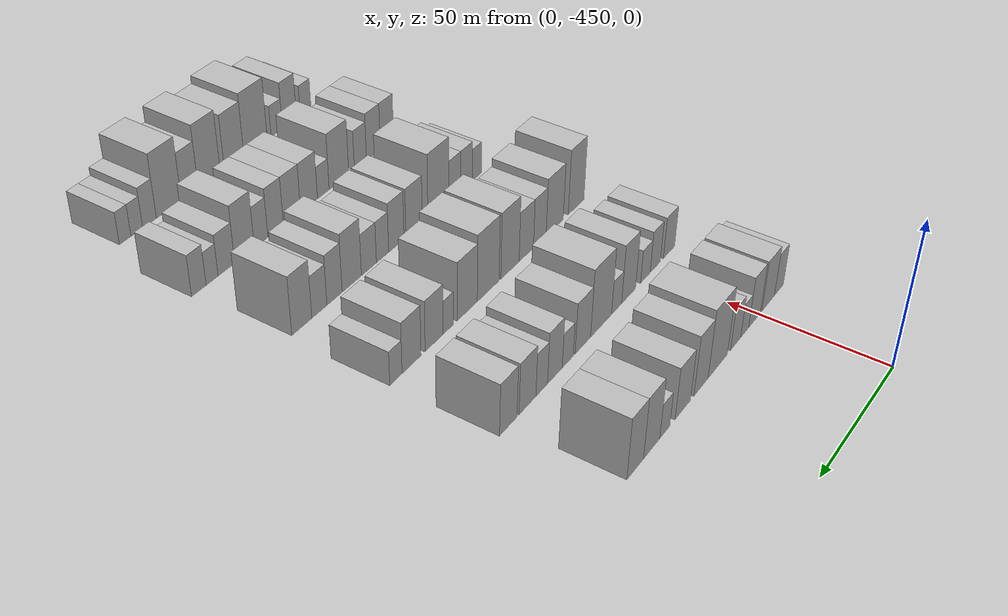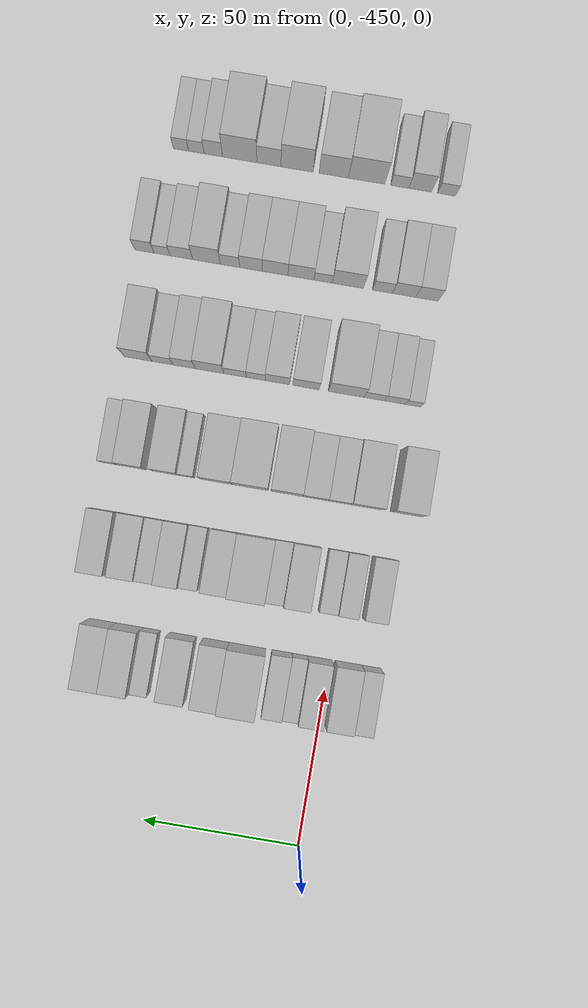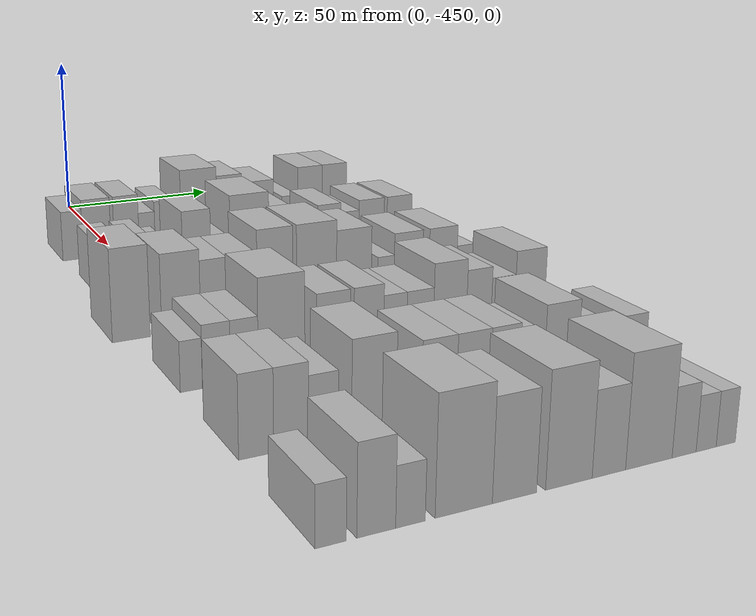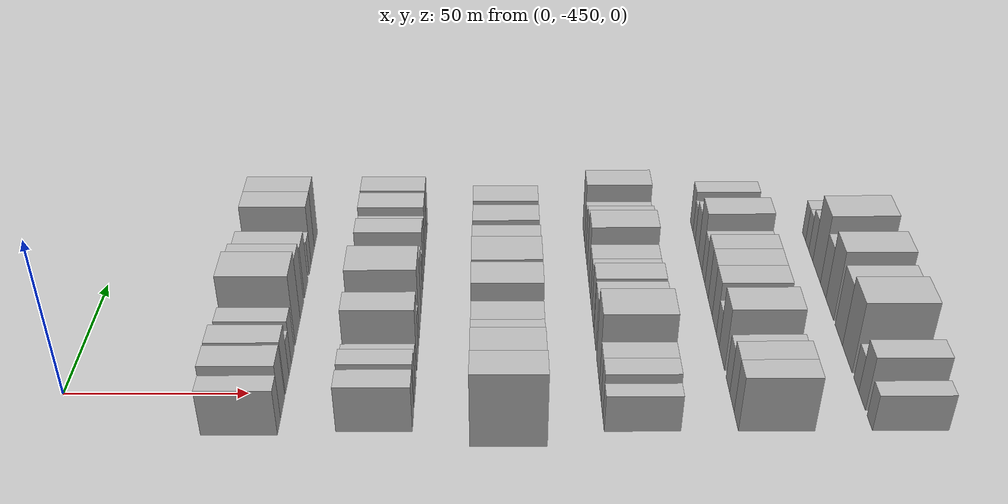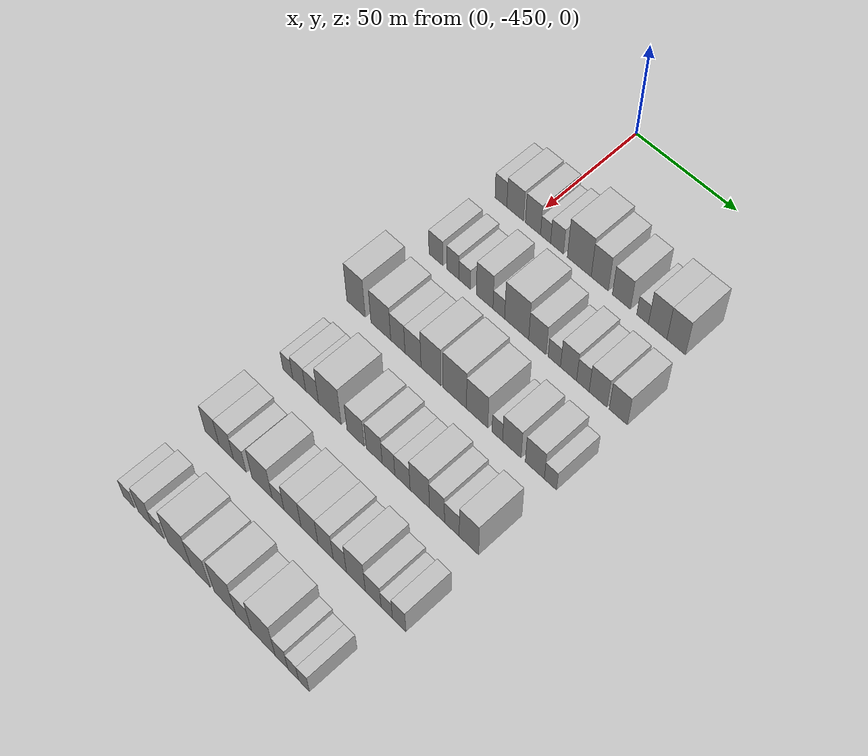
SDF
<sdf version="1.6">
 <world name="default">
  <model name="building_14">
   <static>1</static>
   <pose>50.0000 -463.3640 0 0.000000 0.000000 0.000000</pose>
   <link name="link">
    <pose>0 0 7.50 0 0 0</pose>
    <collision name="collision"><geometry><box><size>20.0000 6.1751 15.0000</size></box></geometry></collision>
    <visual name="visual">
     <cast_shadows>0</cast_shadows>
     <geometry><box><size>20.0000 6.1751 15.0000</size></box></geometry>
     <material>
      <script>
       <uri>model://HANNAS_wall/materials/scripts</uri>
       <uri>model://HANNAS_wall/materials/textures</uri>
       <name>vrc/HANNAS_wall</name>
      </script>
     </material>
    </visual>
   </link>
  </model>
  <model name="building_15">
   <static>1</static>
   <pose>50.0000 -455.9487 0 0.000000 0.000000 0.000000</pose>
   <link name="link">
    <pose>0 0 9.00 0 0 0</pose>
    <collision name="collision"><geometry><box><size>20.0000 8.6555 18.0000</size></box></geometry></collision>
    <visual name="visual">
     <cast_shadows>0</cast_shadows>
     <geometry><box><size>20.0000 8.6555 18.0000</size></box></geometry>
     <material>
      <script>
       <uri>model://HANNAS_wall/materials/scripts</uri>
       <uri>model://HANNAS_wall/materials/textures</uri>
       <name>vrc/HANNAS_wall</name>
      </script>
     </material>
    </visual>
   </link>
  </model>
  <model name="building_16">
   <static>1</static>
   <pose>50.0000 -446.7288 0 0.000000 0.000000 0.000000</pose>
   <link name="link">
    <pose>0 0 9.00 0 0 0</pose>
    <collision name="collision"><geometry><box><size>20.0000 7.7843 18.0000</size></box></geometry></collision>
    <visual name="visual">
     <cast_shadows>0</cast_shadows>
     <geometry><box><size>20.0000 7.7843 18.0000</size></box></geometry>
     <material>
      <script>
       <uri>model://HANNAS_wall/materials/scripts</uri>
       <uri>model://HANNAS_wall/materials/textures</uri>
       <name>vrc/HANNAS_wall</name>
      </script>
     </material>
    </visual>
   </link>
  </model>
  <model name="building_17">
   <static>1</static>
   <pose>50.0000 -440.2830 0 0.000000 0.000000 0.000000</pose>
   <link name="link">
    <pose>0 0 6.00 0 0 0</pose>
    <collision name="collision"><geometry><box><size>20.0000 5.1072 12.0000</size></box></geometry></collision>
    <visual name="visual">
     <cast_shadows>0</cast_shadows>
     <geometry><box><size>20.0000 5.1072 12.0000</size></box></geometry>
     <material>
      <script>
       <uri>model://HANNAS_wall/materials/scripts</uri>
       <uri>model://HANNAS_wall/materials/textures</uri>
       <name>vrc/HANNAS_wall</name>
      </script>
     </material>
    </visual>
   </link>
  </model>
  <model name="building_18">
   <static>1</static>
   <pose>50.0000 -434.4767 0 0.000000 0.000000 0.000000</pose>
   <link name="link">
    <pose>0 0 7.50 0 0 0</pose>
    <collision name="collision"><geometry><box><size>20.0000 6.5054 15.0000</size></box></geometry></collision>
    <visual name="visual">
     <cast_shadows>0</cast_shadows>
     <geometry><box><size>20.0000 6.5054 15.0000</size></box></geometry>
     <material>
      <script>
       <uri>model://HANNAS_wall/materials/scripts</uri>
       <uri>model://HANNAS_wall/materials/textures</uri>
       <name>vrc/HANNAS_wall</name>
      </script>
     </material>
    </visual>
   </link>
  </model>
  <model name="building_19">
   <static>1</static>
   <pose>50.0000 -423.2817 0 0.000000 0.000000 0.000000</pose>
   <link name="link">
    <pose>0 0 12.00 0 0 0</pose>
    <collision name="collision"><geometry><box><size>20.0000 11.8847 24.0000</size></box></geometry></collision>
    <visual name="visual">
     <cast_shadows>0</cast_shadows>
     <geometry><box><size>20.0000 11.8847 24.0000</size></box></geometry>
     <material>
      <script>
       <uri>model://HANNAS_wall/materials/scripts</uri>
       <uri>model://HANNAS_wall/materials/textures</uri>
       <name>vrc/HANNAS_wall</name>
      </script>
     </material>
    </visual>
   </link>
  </model>
  <model name="building_20">
   <static>1</static>
   <pose>50.0000 -413.1167 0 0.000000 0.000000 0.000000</pose>
   <link name="link">
    <pose>0 0 10.50 0 0 0</pose>
    <collision name="collision"><geometry><box><size>20.0000 8.4452 21.0000</size></box></geometry></collision>
    <visual name="visual">
     <cast_shadows>0</cast_shadows>
     <geometry><box><size>20.0000 8.4452 21.0000</size></box></geometry>
     <material>
      <script>
       <uri>model://HANNAS_wall/materials/scripts</uri>
       <uri>model://HANNAS_wall/materials/textures</uri>
       <name>vrc/HANNAS_wall</name>
      </script>
     </material>
    </visual>
   </link>
  </model>
  <model name="building_21">
   <static>1</static>
   <pose>50.0000 -402.4830 0 0.000000 0.000000 0.000000</pose>
   <link name="link">
    <pose>0 0 9.00 0 0 0</pose>
    <collision name="collision"><geometry><box><size>20.0000 8.8222 18.0000</size></box></geometry></collision>
    <visual name="visual">
     <cast_shadows>0</cast_shadows>
     <geometry><box><size>20.0000 8.8222 18.0000</size></box></geometry>
     <material>
      <script>
       <uri>model://HANNAS_wall/materials/scripts</uri>
       <uri>model://HANNAS_wall/materials/textures</uri>
       <name>vrc/HANNAS_wall</name>
      </script>
     </material>
    </visual>
   </link>
  </model>
  <model name="building_22">
   <static>1</static>
   <pose>50.0000 -392.2770 0 0.000000 0.000000 0.000000</pose>
   <link name="link">
    <pose>0 0 6.00 0 0 0</pose>
    <collision name="collision"><geometry><box><size>20.0000 5.5899 12.0000</size></box></geometry></collision>
    <visual name="visual">
     <cast_shadows>0</cast_shadows>
     <geometry><box><size>20.0000 5.5899 12.0000</size></box></geometry>
     <material>
      <script>
       <uri>model://HANNAS_wall/materials/scripts</uri>
       <uri>model://HANNAS_wall/materials/textures</uri>
       <name>vrc/HANNAS_wall</name>
      </script>
     </material>
    </visual>
   </link>
  </model>
  <model name="building_23">
   <static>1</static>
   <pose>50.0000 -385.0762 0 0.000000 0.000000 0.000000</pose>
   <link name="link">
    <pose>0 0 10.50 0 0 0</pose>
    <collision name="collision"><geometry><box><size>20.0000 8.8117 21.0000</size></box></geometry></collision>
    <visual name="visual">
     <cast_shadows>0</cast_shadows>
     <geometry><box><size>20.0000 8.8117 21.0000</size></box></geometry>
     <material>
      <script>
       <uri>model://HANNAS_wall/materials/scripts</uri>
       <uri>model://HANNAS_wall/materials/textures</uri>
       <name>vrc/HANNAS_wall</name>
      </script>
     </material>
    </visual>
   </link>
  </model>
  <model name="building_24">
   <static>1</static>
   <pose>50.0000 -376.3006 0 0.000000 0.000000 0.000000</pose>
   <link name="link">
    <pose>0 0 10.50 0 0 0</pose>
    <collision name="collision"><geometry><box><size>20.0000 8.7395 21.0000</size></box></geometry></collision>
    <visual name="visual">
     <cast_shadows>0</cast_shadows>
     <geometry><box><size>20.0000 8.7395 21.0000</size></box></geometry>
     <material>
      <script>
       <uri>model://HANNAS_wall/materials/scripts</uri>
       <uri>model://HANNAS_wall/materials/textures</uri>
       <name>vrc/HANNAS_wall</name>
      </script>
     </material>
    </visual>
   </link>
  </model>
  <model name="building_127">
   <static>1</static>
   <pose>85.0000 -461.6389 0 0.000000 0.000000 0.000000</pose>
   <link name="link">
    <pose>0 0 7.50 0 0 0</pose>
    <collision name="collision"><geometry><box><size>20.0000 7.2455 15.0000</size></box></geometry></collision>
    <visual name="visual">
     <cast_shadows>0</cast_shadows>
     <geometry><box><size>20.0000 7.2455 15.0000</size></box></geometry>
     <material>
      <script>
       <uri>model://HANNAS_wall/materials/scripts</uri>
       <uri>model://HANNAS_wall/materials/textures</uri>
       <name>vrc/HANNAS_wall</name>
      </script>
     </material>
    </visual>
   </link>
  </model>
  <model name="building_128">
   <static>1</static>
   <pose>85.0000 -452.8555 0 0.000000 0.000000 0.000000</pose>
   <link name="link">
    <pose>0 0 7.50 0 0 0</pose>
    <collision name="collision"><geometry><box><size>20.0000 6.3213 15.0000</size></box></geometry></collision>
    <visual name="visual">
     <cast_shadows>0</cast_shadows>
     <geometry><box><size>20.0000 6.3213 15.0000</size></box></geometry>
     <material>
      <script>
       <uri>model://HANNAS_wall/materials/scripts</uri>
       <uri>model://HANNAS_wall/materials/textures</uri>
       <name>vrc/HANNAS_wall</name>
      </script>
     </material>
    </visual>
   </link>
  </model>
  <model name="building_129">
   <static>1</static>
   <pose>85.0000 -446.6982 0 0.000000 0.000000 0.000000</pose>
   <link name="link">
    <pose>0 0 6.00 0 0 0</pose>
    <collision name="collision"><geometry><box><size>20.0000 5.9933 12.0000</size></box></geometry></collision>
    <visual name="visual">
     <cast_shadows>0</cast_shadows>
     <geometry><box><size>20.0000 5.9933 12.0000</size></box></geometry>
     <material>
      <script>
       <uri>model://HANNAS_wall/materials/scripts</uri>
       <uri>model://HANNAS_wall/materials/textures</uri>
       <name>vrc/HANNAS_wall</name>
      </script>
     </material>
    </visual>
   </link>
  </model>
  <model name="building_130">
   <static>1</static>
   <pose>85.0000 -436.4983 0 0.000000 0.000000 0.000000</pose>
   <link name="link">
    <pose>0 0 10.50 0 0 0</pose>
    <collision name="collision"><geometry><box><size>20.0000 8.4065 21.0000</size></box></geometry></collision>
    <visual name="visual">
     <cast_shadows>0</cast_shadows>
     <geometry><box><size>20.0000 8.4065 21.0000</size></box></geometry>
     <material>
      <script>
       <uri>model://HANNAS_wall/materials/scripts</uri>
       <uri>model://HANNAS_wall/materials/textures</uri>
       <name>vrc/HANNAS_wall</name>
      </script>
     </material>
    </visual>
   </link>
  </model>
  <model name="building_131">
   <static>1</static>
   <pose>85.0000 -429.3669 0 0.000000 0.000000 0.000000</pose>
   <link name="link">
    <pose>0 0 6.00 0 0 0</pose>
    <collision name="collision"><geometry><box><size>20.0000 5.8563 12.0000</size></box></geometry></collision>
    <visual name="visual">
     <cast_shadows>0</cast_shadows>
     <geometry><box><size>20.0000 5.8563 12.0000</size></box></geometry>
     <material>
      <script>
       <uri>model://HANNAS_wall/materials/scripts</uri>
       <uri>model://HANNAS_wall/materials/textures</uri>
       <name>vrc/HANNAS_wall</name>
      </script>
     </material>
    </visual>
   </link>
  </model>
  <model name="building_132">
   <static>1</static>
   <pose>85.0000 -420.4514 0 0.000000 0.000000 0.000000</pose>
   <link name="link">
    <pose>0 0 12.00 0 0 0</pose>
    <collision name="collision"><geometry><box><size>20.0000 11.9746 24.0000</size></box></geometry></collision>
    <visual name="visual">
     <cast_shadows>0</cast_shadows>
     <geometry><box><size>20.0000 11.9746 24.0000</size></box></geometry>
     <material>
      <script>
       <uri>model://HANNAS_wall/materials/scripts</uri>
       <uri>model://HANNAS_wall/materials/textures</uri>
       <name>vrc/HANNAS_wall</name>
      </script>
     </material>
    </visual>
   </link>
  </model>
  <model name="building_133">
   <static>1</static>
   <pose>85.0000 -410.1818 0 0.000000 0.000000 0.000000</pose>
   <link name="link">
    <pose>0 0 9.00 0 0 0</pose>
    <collision name="collision"><geometry><box><size>20.0000 8.5647 18.0000</size></box></geometry></collision>
    <visual name="visual">
     <cast_shadows>0</cast_shadows>
     <geometry><box><size>20.0000 8.5647 18.0000</size></box></geometry>
     <material>
      <script>
       <uri>model://HANNAS_wall/materials/scripts</uri>
       <uri>model://HANNAS_wall/materials/textures</uri>
       <name>vrc/HANNAS_wall</name>
      </script>
     </material>
    </visual>
   </link>
  </model>
  <model name="building_134">
   <static>1</static>
   <pose>85.0000 -401.9093 0 0.000000 0.000000 0.000000</pose>
   <link name="link">
    <pose>0 0 6.00 0 0 0</pose>
    <collision name="collision"><geometry><box><size>20.0000 5.9803 12.0000</size></box></geometry></collision>
    <visual name="visual">
     <cast_shadows>0</cast_shadows>
     <geometry><box><size>20.0000 5.9803 12.0000</size></box></geometry>
     <material>
      <script>
       <uri>model://HANNAS_wall/materials/scripts</uri>
       <uri>model://HANNAS_wall/materials/textures</uri>
       <name>vrc/HANNAS_wall</name>
      </script>
     </material>
    </visual>
   </link>
  </model>
  <model name="building_135">
   <static>1</static>
   <pose>85.0000 -395.0587 0 0.000000 0.000000 0.000000</pose>
   <link name="link">
    <pose>0 0 9.00 0 0 0</pose>
    <collision name="collision"><geometry><box><size>20.0000 7.7208 18.0000</size></box></geometry></collision>
    <visual name="visual">
     <cast_shadows>0</cast_shadows>
     <geometry><box><size>20.0000 7.7208 18.0000</size></box></geometry>
     <material>
      <script>
       <uri>model://HANNAS_wall/materials/scripts</uri>
       <uri>model://HANNAS_wall/materials/textures</uri>
       <name>vrc/HANNAS_wall</name>
      </script>
     </material>
    </visual>
   </link>
  </model>
  <model name="building_136">
   <static>1</static>
   <pose>85.0000 -388.1897 0 0.000000 0.000000 0.000000</pose>
   <link name="link">
    <pose>0 0 7.50 0 0 0</pose>
    <collision name="collision"><geometry><box><size>20.0000 6.0171 15.0000</size></box></geometry></collision>
    <visual name="visual">
     <cast_shadows>0</cast_shadows>
     <geometry><box><size>20.0000 6.0171 15.0000</size></box></geometry>
     <material>
      <script>
       <uri>model://HANNAS_wall/materials/scripts</uri>
       <uri>model://HANNAS_wall/materials/textures</uri>
       <name>vrc/HANNAS_wall</name>
      </script>
     </material>
    </visual>
   </link>
  </model>
  <model name="building_137">
   <static>1</static>
   <pose>85.0000 -380.9434 0 0.000000 0.000000 0.000000</pose>
   <link name="link">
    <pose>0 0 9.00 0 0 0</pose>
    <collision name="collision"><geometry><box><size>20.0000 8.4756 18.0000</size></box></geometry></collision>
    <visual name="visual">
     <cast_shadows>0</cast_shadows>
     <geometry><box><size>20.0000 8.4756 18.0000</size></box></geometry>
     <material>
      <script>
       <uri>model://HANNAS_wall/materials/scripts</uri>
       <uri>model://HANNAS_wall/materials/textures</uri>
       <name>vrc/HANNAS_wall</name>
      </script>
     </material>
    </visual>
   </link>
  </model>
  <model name="building_138">
   <static>1</static>
   <pose>85.0000 -371.4460 0 0.000000 0.000000 0.000000</pose>
   <link name="link">
    <pose>0 0 9.00 0 0 0</pose>
    <collision name="collision"><geometry><box><size>20.0000 8.5192 18.0000</size></box></geometry></collision>
    <visual name="visual">
     <cast_shadows>0</cast_shadows>
     <geometry><box><size>20.0000 8.5192 18.0000</size></box></geometry>
     <material>
      <script>
       <uri>model://HANNAS_wall/materials/scripts</uri>
       <uri>model://HANNAS_wall/materials/textures</uri>
       <name>vrc/HANNAS_wall</name>
      </script>
     </material>
    </visual>
   </link>
  </model>
  <model name="building_259">
   <static>1</static>
   <pose>120.0000 -466.1505 0 0.000000 0.000000 0.000000</pose>
   <link name="link">
    <pose>0 0 12.00 0 0 0</pose>
    <collision name="collision"><geometry><box><size>20.0000 9.6608 24.0000</size></box></geometry></collision>
    <visual name="visual">
     <cast_shadows>0</cast_shadows>
     <geometry><box><size>20.0000 9.6608 24.0000</size></box></geometry>
     <material>
      <script>
       <uri>model://HANNAS_wall/materials/scripts</uri>
       <uri>model://HANNAS_wall/materials/textures</uri>
       <name>vrc/HANNAS_wall</name>
      </script>
     </material>
    </visual>
   </link>
  </model>
  <model name="building_260">
   <static>1</static>
   <pose>120.0000 -453.1926 0 0.000000 0.000000 0.000000</pose>
   <link name="link">
    <pose>0 0 10.50 0 0 0</pose>
    <collision name="collision"><geometry><box><size>20.0000 10.2551 21.0000</size></box></geometry></collision>
    <visual name="visual">
     <cast_shadows>0</cast_shadows>
     <geometry><box><size>20.0000 10.2551 21.0000</size></box></geometry>
     <material>
      <script>
       <uri>model://HANNAS_wall/materials/scripts</uri>
       <uri>model://HANNAS_wall/materials/textures</uri>
       <name>vrc/HANNAS_wall</name>
      </script>
     </material>
    </visual>
   </link>
  </model>
  <model name="building_261">
   <static>1</static>
   <pose>120.0000 -444.3933 0 0.000000 0.000000 0.000000</pose>
   <link name="link">
    <pose>0 0 9.00 0 0 0</pose>
    <collision name="collision"><geometry><box><size>20.0000 7.3434 18.0000</size></box></geometry></collision>
    <visual name="visual">
     <cast_shadows>0</cast_shadows>
     <geometry><box><size>20.0000 7.3434 18.0000</size></box></geometry>
     <material>
      <script>
       <uri>model://HANNAS_wall/materials/scripts</uri>
       <uri>model://HANNAS_wall/materials/textures</uri>
       <name>vrc/HANNAS_wall</name>
      </script>
     </material>
    </visual>
   </link>
  </model>
  <model name="building_262">
   <static>1</static>
   <pose>120.0000 -436.6444 0 0.000000 0.000000 0.000000</pose>
   <link name="link">
    <pose>0 0 9.00 0 0 0</pose>
    <collision name="collision"><geometry><box><size>20.0000 8.1545 18.0000</size></box></geometry></collision>
    <visual name="visual">
     <cast_shadows>0</cast_shadows>
     <geometry><box><size>20.0000 8.1545 18.0000</size></box></geometry>
     <material>
      <script>
       <uri>model://HANNAS_wall/materials/scripts</uri>
       <uri>model://HANNAS_wall/materials/textures</uri>
       <name>vrc/HANNAS_wall</name>
      </script>
     </material>
    </visual>
   </link>
  </model>
  <model name="building_263">
   <static>1</static>
   <pose>120.0000 -427.5263 0 0.000000 0.000000 0.000000</pose>
   <link name="link">
    <pose>0 0 12.00 0 0 0</pose>
    <collision name="collision"><geometry><box><size>20.0000 10.0816 24.0000</size></box></geometry></collision>
    <visual name="visual">
     <cast_shadows>0</cast_shadows>
     <geometry><box><size>20.0000 10.0816 24.0000</size></box></geometry>
     <material>
      <script>
       <uri>model://HANNAS_wall/materials/scripts</uri>
       <uri>model://HANNAS_wall/materials/textures</uri>
       <name>vrc/HANNAS_wall</name>
      </script>
     </material>
    </visual>
   </link>
  </model>
  <model name="building_264">
   <static>1</static>
   <pose>120.0000 -415.6825 0 0.000000 0.000000 0.000000</pose>
   <link name="link">
    <pose>0 0 12.00 0 0 0</pose>
    <collision name="collision"><geometry><box><size>20.0000 11.6062 24.0000</size></box></geometry></collision>
    <visual name="visual">
     <cast_shadows>0</cast_shadows>
     <geometry><box><size>20.0000 11.6062 24.0000</size></box></geometry>
     <material>
      <script>
       <uri>model://HANNAS_wall/materials/scripts</uri>
       <uri>model://HANNAS_wall/materials/textures</uri>
       <name>vrc/HANNAS_wall</name>
      </script>
     </material>
    </visual>
   </link>
  </model>
  <model name="building_265">
   <static>1</static>
   <pose>120.0000 -404.6755 0 0.000000 0.000000 0.000000</pose>
   <link name="link">
    <pose>0 0 10.50 0 0 0</pose>
    <collision name="collision"><geometry><box><size>20.0000 10.4076 21.0000</size></box></geometry></collision>
    <visual name="visual">
     <cast_shadows>0</cast_shadows>
     <geometry><box><size>20.0000 10.4076 21.0000</size></box></geometry>
     <material>
      <script>
       <uri>model://HANNAS_wall/materials/scripts</uri>
       <uri>model://HANNAS_wall/materials/textures</uri>
       <name>vrc/HANNAS_wall</name>
      </script>
     </material>
    </visual>
   </link>
  </model>
  <model name="building_266">
   <static>1</static>
   <pose>120.0000 -394.9321 0 0.000000 0.000000 0.000000</pose>
   <link name="link">
    <pose>0 0 6.00 0 0 0</pose>
    <collision name="collision"><geometry><box><size>20.0000 5.0793 12.0000</size></box></geometry></collision>
    <visual name="visual">
     <cast_shadows>0</cast_shadows>
     <geometry><box><size>20.0000 5.0793 12.0000</size></box></geometry>
     <material>
      <script>
       <uri>model://HANNAS_wall/materials/scripts</uri>
       <uri>model://HANNAS_wall/materials/textures</uri>
       <name>vrc/HANNAS_wall</name>
      </script>
     </material>
    </visual>
   </link>
  </model>
  <model name="building_267">
   <static>1</static>
   <pose>120.0000 -387.9754 0 0.000000 0.000000 0.000000</pose>
   <link name="link">
    <pose>0 0 9.00 0 0 0</pose>
    <collision name="collision"><geometry><box><size>20.0000 8.8342 18.0000</size></box></geometry></collision>
    <visual name="visual">
     <cast_shadows>0</cast_shadows>
     <geometry><box><size>20.0000 8.8342 18.0000</size></box></geometry>
     <material>
      <script>
       <uri>model://HANNAS_wall/materials/scripts</uri>
       <uri>model://HANNAS_wall/materials/textures</uri>
       <name>vrc/HANNAS_wall</name>
      </script>
     </material>
    </visual>
   </link>
  </model>
  <model name="building_268">
   <static>1</static>
   <pose>120.0000 -377.0949 0 0.000000 0.000000 0.000000</pose>
   <link name="link">
    <pose>0 0 9.00 0 0 0</pose>
    <collision name="collision"><geometry><box><size>20.0000 8.9268 18.0000</size></box></geometry></collision>
    <visual name="visual">
     <cast_shadows>0</cast_shadows>
     <geometry><box><size>20.0000 8.9268 18.0000</size></box></geometry>
     <material>
      <script>
       <uri>model://HANNAS_wall/materials/scripts</uri>
       <uri>model://HANNAS_wall/materials/textures</uri>
       <name>vrc/HANNAS_wall</name>
      </script>
     </material>
    </visual>
   </link>
  </model>
  <model name="building_269">
   <static>1</static>
   <pose>120.0000 -369.7821 0 0.000000 0.000000 0.000000</pose>
   <link name="link">
    <pose>0 0 6.00 0 0 0</pose>
    <collision name="collision"><geometry><box><size>20.0000 5.6987 12.0000</size></box></geometry></collision>
    <visual name="visual">
     <cast_shadows>0</cast_shadows>
     <geometry><box><size>20.0000 5.6987 12.0000</size></box></geometry>
     <material>
      <script>
       <uri>model://HANNAS_wall/materials/scripts</uri>
       <uri>model://HANNAS_wall/materials/textures</uri>
       <name>vrc/HANNAS_wall</name>
      </script>
     </material>
    </visual>
   </link>
  </model>
  <model name="building_394">
   <static>1</static>
   <pose>155.0000 -462.8436 0 0.000000 0.000000 0.000000</pose>
   <link name="link">
    <pose>0 0 6.00 0 0 0</pose>
    <collision name="collision"><geometry><box><size>20.0000 5.1651 12.0000</size></box></geometry></collision>
    <visual name="visual">
     <cast_shadows>0</cast_shadows>
     <geometry><box><size>20.0000 5.1651 12.0000</size></box></geometry>
     <material>
      <script>
       <uri>model://HANNAS_wall/materials/scripts</uri>
       <uri>model://HANNAS_wall/materials/textures</uri>
       <name>vrc/HANNAS_wall</name>
      </script>
     </material>
    </visual>
   </link>
  </model>
  <model name="building_395">
   <static>1</static>
   <pose>155.0000 -456.8974 0 0.000000 0.000000 0.000000</pose>
   <link name="link">
    <pose>0 0 7.50 0 0 0</pose>
    <collision name="collision"><geometry><box><size>20.0000 6.7274 15.0000</size></box></geometry></collision>
    <visual name="visual">
     <cast_shadows>0</cast_shadows>
     <geometry><box><size>20.0000 6.7274 15.0000</size></box></geometry>
     <material>
      <script>
       <uri>model://HANNAS_wall/materials/scripts</uri>
       <uri>model://HANNAS_wall/materials/textures</uri>
       <name>vrc/HANNAS_wall</name>
      </script>
     </material>
    </visual>
   </link>
  </model>
  <model name="building_396">
   <static>1</static>
   <pose>155.0000 -450.1649 0 0.000000 0.000000 0.000000</pose>
   <link name="link">
    <pose>0 0 7.50 0 0 0</pose>
    <collision name="collision"><geometry><box><size>20.0000 6.7376 15.0000</size></box></geometry></collision>
    <visual name="visual">
     <cast_shadows>0</cast_shadows>
     <geometry><box><size>20.0000 6.7376 15.0000</size></box></geometry>
     <material>
      <script>
       <uri>model://HANNAS_wall/materials/scripts</uri>
       <uri>model://HANNAS_wall/materials/textures</uri>
       <name>vrc/HANNAS_wall</name>
      </script>
     </material>
    </visual>
   </link>
  </model>
  <model name="building_397">
   <static>1</static>
   <pose>155.0000 -440.9784 0 0.000000 0.000000 0.000000</pose>
   <link name="link">
    <pose>0 0 12.00 0 0 0</pose>
    <collision name="collision"><geometry><box><size>20.0000 11.6355 24.0000</size></box></geometry></collision>
    <visual name="visual">
     <cast_shadows>0</cast_shadows>
     <geometry><box><size>20.0000 11.6355 24.0000</size></box></geometry>
     <material>
      <script>
       <uri>model://HANNAS_wall/materials/scripts</uri>
       <uri>model://HANNAS_wall/materials/textures</uri>
       <name>vrc/HANNAS_wall</name>
      </script>
     </material>
    </visual>
   </link>
  </model>
  <model name="building_398">
   <static>1</static>
   <pose>155.0000 -427.8371 0 0.000000 0.000000 0.000000</pose>
   <link name="link">
    <pose>0 0 9.00 0 0 0</pose>
    <collision name="collision"><geometry><box><size>20.0000 8.6473 18.0000</size></box></geometry></collision>
    <visual name="visual">
     <cast_shadows>0</cast_shadows>
     <geometry><box><size>20.0000 8.6473 18.0000</size></box></geometry>
     <material>
      <script>
       <uri>model://HANNAS_wall/materials/scripts</uri>
       <uri>model://HANNAS_wall/materials/textures</uri>
       <name>vrc/HANNAS_wall</name>
      </script>
     </material>
    </visual>
   </link>
  </model>
  <model name="building_399">
   <static>1</static>
   <pose>155.0000 -418.5430 0 0.000000 0.000000 0.000000</pose>
   <link name="link">
    <pose>0 0 9.00 0 0 0</pose>
    <collision name="collision"><geometry><box><size>20.0000 7.9409 18.0000</size></box></geometry></collision>
    <visual name="visual">
     <cast_shadows>0</cast_shadows>
     <geometry><box><size>20.0000 7.9409 18.0000</size></box></geometry>
     <material>
      <script>
       <uri>model://HANNAS_wall/materials/scripts</uri>
       <uri>model://HANNAS_wall/materials/textures</uri>
       <name>vrc/HANNAS_wall</name>
      </script>
     </material>
    </visual>
   </link>
  </model>
  <model name="building_400">
   <static>1</static>
   <pose>155.0000 -411.4552 0 0.000000 0.000000 0.000000</pose>
   <link name="link">
    <pose>0 0 7.50 0 0 0</pose>
    <collision name="collision"><geometry><box><size>20.0000 6.2347 15.0000</size></box></geometry></collision>
    <visual name="visual">
     <cast_shadows>0</cast_shadows>
     <geometry><box><size>20.0000 6.2347 15.0000</size></box></geometry>
     <material>
      <script>
       <uri>model://HANNAS_wall/materials/scripts</uri>
       <uri>model://HANNAS_wall/materials/textures</uri>
       <name>vrc/HANNAS_wall</name>
      </script>
     </material>
    </visual>
   </link>
  </model>
  <model name="building_401">
   <static>1</static>
   <pose>155.0000 -404.6234 0 0.000000 0.000000 0.000000</pose>
   <link name="link">
    <pose>0 0 7.50 0 0 0</pose>
    <collision name="collision"><geometry><box><size>20.0000 7.4289 15.0000</size></box></geometry></collision>
    <visual name="visual">
     <cast_shadows>0</cast_shadows>
     <geometry><box><size>20.0000 7.4289 15.0000</size></box></geometry>
     <material>
      <script>
       <uri>model://HANNAS_wall/materials/scripts</uri>
       <uri>model://HANNAS_wall/materials/textures</uri>
       <name>vrc/HANNAS_wall</name>
      </script>
     </material>
    </visual>
   </link>
  </model>
  <model name="building_402">
   <static>1</static>
   <pose>155.0000 -396.2330 0 0.000000 0.000000 0.000000</pose>
   <link name="link">
    <pose>0 0 10.50 0 0 0</pose>
    <collision name="collision"><geometry><box><size>20.0000 9.3520 21.0000</size></box></geometry></collision>
    <visual name="visual">
     <cast_shadows>0</cast_shadows>
     <geometry><box><size>20.0000 9.3520 21.0000</size></box></geometry>
     <material>
      <script>
       <uri>model://HANNAS_wall/materials/scripts</uri>
       <uri>model://HANNAS_wall/materials/textures</uri>
       <name>vrc/HANNAS_wall</name>
      </script>
     </material>
    </visual>
   </link>
  </model>
  <model name="building_403">
   <static>1</static>
   <pose>155.0000 -387.9514 0 0.000000 0.000000 0.000000</pose>
   <link name="link">
    <pose>0 0 9.00 0 0 0</pose>
    <collision name="collision"><geometry><box><size>20.0000 7.2111 18.0000</size></box></geometry></collision>
    <visual name="visual">
     <cast_shadows>0</cast_shadows>
     <geometry><box><size>20.0000 7.2111 18.0000</size></box></geometry>
     <material>
      <script>
       <uri>model://HANNAS_wall/materials/scripts</uri>
       <uri>model://HANNAS_wall/materials/textures</uri>
       <name>vrc/HANNAS_wall</name>
      </script>
     </material>
    </visual>
   </link>
  </model>
  <model name="building_404">
   <static>1</static>
   <pose>155.0000 -380.8732 0 0.000000 0.000000 0.000000</pose>
   <link name="link">
    <pose>0 0 7.50 0 0 0</pose>
    <collision name="collision"><geometry><box><size>20.0000 6.9454 15.0000</size></box></geometry></collision>
    <visual name="visual">
     <cast_shadows>0</cast_shadows>
     <geometry><box><size>20.0000 6.9454 15.0000</size></box></geometry>
     <material>
      <script>
       <uri>model://HANNAS_wall/materials/scripts</uri>
       <uri>model://HANNAS_wall/materials/textures</uri>
       <name>vrc/HANNAS_wall</name>
      </script>
     </material>
    </visual>
   </link>
  </model>
  <model name="building_405">
   <static>1</static>
   <pose>155.0000 -372.8709 0 0.000000 0.000000 0.000000</pose>
   <link name="link">
    <pose>0 0 10.50 0 0 0</pose>
    <collision name="collision"><geometry><box><size>20.0000 9.0593 21.0000</size></box></geometry></collision>
    <visual name="visual">
     <cast_shadows>0</cast_shadows>
     <geometry><box><size>20.0000 9.0593 21.0000</size></box></geometry>
     <material>
      <script>
       <uri>model://HANNAS_wall/materials/scripts</uri>
       <uri>model://HANNAS_wall/materials/textures</uri>
       <name>vrc/HANNAS_wall</name>
      </script>
     </material>
    </visual>
   </link>
  </model>
  <model name="building_521">
   <static>1</static>
   <pose>190.0000 -461.7141 0 0.000000 0.000000 0.000000</pose>
   <link name="link">
    <pose>0 0 9.00 0 0 0</pose>
    <collision name="collision"><geometry><box><size>20.0000 7.4388 18.0000</size></box></geometry></collision>
    <visual name="visual">
     <cast_shadows>0</cast_shadows>
     <geometry><box><size>20.0000 7.4388 18.0000</size></box></geometry>
     <material>
      <script>
       <uri>model://HANNAS_wall/materials/scripts</uri>
       <uri>model://HANNAS_wall/materials/textures</uri>
       <name>vrc/HANNAS_wall</name>
      </script>
     </material>
    </visual>
   </link>
  </model>
  <model name="building_522">
   <static>1</static>
   <pose>190.0000 -454.1990 0 0.000000 0.000000 0.000000</pose>
   <link name="link">
    <pose>0 0 9.00 0 0 0</pose>
    <collision name="collision"><geometry><box><size>20.0000 7.5913 18.0000</size></box></geometry></collision>
    <visual name="visual">
     <cast_shadows>0</cast_shadows>
     <geometry><box><size>20.0000 7.5913 18.0000</size></box></geometry>
     <material>
      <script>
       <uri>model://HANNAS_wall/materials/scripts</uri>
       <uri>model://HANNAS_wall/materials/textures</uri>
       <name>vrc/HANNAS_wall</name>
      </script>
     </material>
    </visual>
   </link>
  </model>
  <model name="building_523">
   <static>1</static>
   <pose>190.0000 -447.1096 0 0.000000 0.000000 0.000000</pose>
   <link name="link">
    <pose>0 0 7.50 0 0 0</pose>
    <collision name="collision"><geometry><box><size>20.0000 6.5876 15.0000</size></box></geometry></collision>
    <visual name="visual">
     <cast_shadows>0</cast_shadows>
     <geometry><box><size>20.0000 6.5876 15.0000</size></box></geometry>
     <material>
      <script>
       <uri>model://HANNAS_wall/materials/scripts</uri>
       <uri>model://HANNAS_wall/materials/textures</uri>
       <name>vrc/HANNAS_wall</name>
      </script>
     </material>
    </visual>
   </link>
  </model>
  <model name="building_524">
   <static>1</static>
   <pose>190.0000 -435.6658 0 0.000000 0.000000 0.000000</pose>
   <link name="link">
    <pose>0 0 10.50 0 0 0</pose>
    <collision name="collision"><geometry><box><size>20.0000 10.3000 21.0000</size></box></geometry></collision>
    <visual name="visual">
     <cast_shadows>0</cast_shadows>
     <geometry><box><size>20.0000 10.3000 21.0000</size></box></geometry>
     <material>
      <script>
       <uri>model://HANNAS_wall/materials/scripts</uri>
       <uri>model://HANNAS_wall/materials/textures</uri>
       <name>vrc/HANNAS_wall</name>
      </script>
     </material>
    </visual>
   </link>
  </model>
  <model name="building_525">
   <static>1</static>
   <pose>190.0000 -427.5170 0 0.000000 0.000000 0.000000</pose>
   <link name="link">
    <pose>0 0 6.00 0 0 0</pose>
    <collision name="collision"><geometry><box><size>20.0000 5.9976 12.0000</size></box></geometry></collision>
    <visual name="visual">
     <cast_shadows>0</cast_shadows>
     <geometry><box><size>20.0000 5.9976 12.0000</size></box></geometry>
     <material>
      <script>
       <uri>model://HANNAS_wall/materials/scripts</uri>
       <uri>model://HANNAS_wall/materials/textures</uri>
       <name>vrc/HANNAS_wall</name>
      </script>
     </material>
    </visual>
   </link>
  </model>
  <model name="building_526">
   <static>1</static>
   <pose>190.0000 -420.2631 0 0.000000 0.000000 0.000000</pose>
   <link name="link">
    <pose>0 0 9.00 0 0 0</pose>
    <collision name="collision"><geometry><box><size>20.0000 8.5102 18.0000</size></box></geometry></collision>
    <visual name="visual">
     <cast_shadows>0</cast_shadows>
     <geometry><box><size>20.0000 8.5102 18.0000</size></box></geometry>
     <material>
      <script>
       <uri>model://HANNAS_wall/materials/scripts</uri>
       <uri>model://HANNAS_wall/materials/textures</uri>
       <name>vrc/HANNAS_wall</name>
      </script>
     </material>
    </visual>
   </link>
  </model>
  <model name="building_527">
   <static>1</static>
   <pose>190.0000 -411.7946 0 0.000000 0.000000 0.000000</pose>
   <link name="link">
    <pose>0 0 9.00 0 0 0</pose>
    <collision name="collision"><geometry><box><size>20.0000 8.4268 18.0000</size></box></geometry></collision>
    <visual name="visual">
     <cast_shadows>0</cast_shadows>
     <geometry><box><size>20.0000 8.4268 18.0000</size></box></geometry>
     <material>
      <script>
       <uri>model://HANNAS_wall/materials/scripts</uri>
       <uri>model://HANNAS_wall/materials/textures</uri>
       <name>vrc/HANNAS_wall</name>
      </script>
     </material>
    </visual>
   </link>
  </model>
  <model name="building_528">
   <static>1</static>
   <pose>190.0000 -403.8615 0 0.000000 0.000000 0.000000</pose>
   <link name="link">
    <pose>0 0 9.00 0 0 0</pose>
    <collision name="collision"><geometry><box><size>20.0000 7.4394 18.0000</size></box></geometry></collision>
    <visual name="visual">
     <cast_shadows>0</cast_shadows>
     <geometry><box><size>20.0000 7.4394 18.0000</size></box></geometry>
     <material>
      <script>
       <uri>model://HANNAS_wall/materials/scripts</uri>
       <uri>model://HANNAS_wall/materials/textures</uri>
       <name>vrc/HANNAS_wall</name>
      </script>
     </material>
    </visual>
   </link>
  </model>
  <model name="building_529">
   <static>1</static>
   <pose>190.0000 -396.9437 0 0.000000 0.000000 0.000000</pose>
   <link name="link">
    <pose>0 0 7.50 0 0 0</pose>
    <collision name="collision"><geometry><box><size>20.0000 6.3961 15.0000</size></box></geometry></collision>
    <visual name="visual">
     <cast_shadows>0</cast_shadows>
     <geometry><box><size>20.0000 6.3961 15.0000</size></box></geometry>
     <material>
      <script>
       <uri>model://HANNAS_wall/materials/scripts</uri>
       <uri>model://HANNAS_wall/materials/textures</uri>
       <name>vrc/HANNAS_wall</name>
      </script>
     </material>
    </visual>
   </link>
  </model>
  <model name="building_530">
   <static>1</static>
   <pose>190.0000 -389.2095 0 0.000000 0.000000 0.000000</pose>
   <link name="link">
    <pose>0 0 10.50 0 0 0</pose>
    <collision name="collision"><geometry><box><size>20.0000 9.0723 21.0000</size></box></geometry></collision>
    <visual name="visual">
     <cast_shadows>0</cast_shadows>
     <geometry><box><size>20.0000 9.0723 21.0000</size></box></geometry>
     <material>
      <script>
       <uri>model://HANNAS_wall/materials/scripts</uri>
       <uri>model://HANNAS_wall/materials/textures</uri>
       <name>vrc/HANNAS_wall</name>
      </script>
     </material>
    </visual>
   </link>
  </model>
  <model name="building_531">
   <static>1</static>
   <pose>190.0000 -380.9335 0 0.000000 0.000000 0.000000</pose>
   <link name="link">
    <pose>0 0 7.50 0 0 0</pose>
    <collision name="collision"><geometry><box><size>20.0000 7.4798 15.0000</size></box></geometry></collision>
    <visual name="visual">
     <cast_shadows>0</cast_shadows>
     <geometry><box><size>20.0000 7.4798 15.0000</size></box></geometry>
     <material>
      <script>
       <uri>model://HANNAS_wall/materials/scripts</uri>
       <uri>model://HANNAS_wall/materials/textures</uri>
       <name>vrc/HANNAS_wall</name>
      </script>
     </material>
    </visual>
   </link>
  </model>
  <model name="building_532">
   <static>1</static>
   <pose>190.0000 -374.5511 0 0.000000 0.000000 0.000000</pose>
   <link name="link">
    <pose>0 0 6.00 0 0 0</pose>
    <collision name="collision"><geometry><box><size>20.0000 5.2849 12.0000</size></box></geometry></collision>
    <visual name="visual">
     <cast_shadows>0</cast_shadows>
     <geometry><box><size>20.0000 5.2849 12.0000</size></box></geometry>
     <material>
      <script>
       <uri>model://HANNAS_wall/materials/scripts</uri>
       <uri>model://HANNAS_wall/materials/textures</uri>
       <name>vrc/HANNAS_wall</name>
      </script>
     </material>
    </visual>
   </link>
  </model>
  <model name="building_533">
   <static>1</static>
   <pose>190.0000 -368.7498 0 0.000000 0.000000 0.000000</pose>
   <link name="link">
    <pose>0 0 7.50 0 0 0</pose>
    <collision name="collision"><geometry><box><size>20.0000 6.3176 15.0000</size></box></geometry></collision>
    <visual name="visual">
     <cast_shadows>0</cast_shadows>
     <geometry><box><size>20.0000 6.3176 15.0000</size></box></geometry>
     <material>
      <script>
       <uri>model://HANNAS_wall/materials/scripts</uri>
       <uri>model://HANNAS_wall/materials/textures</uri>
       <name>vrc/HANNAS_wall</name>
      </script>
     </material>
    </visual>
   </link>
  </model>
  <model name="building_652">
   <static>1</static>
   <pose>225.0000 -462.4887 0 0.000000 0.000000 0.000000</pose>
   <link name="link">
    <pose>0 0 6.00 0 0 0</pose>
    <collision name="collision"><geometry><box><size>20.0000 5.9029 12.0000</size></box></geometry></collision>
    <visual name="visual">
     <cast_shadows>0</cast_shadows>
     <geometry><box><size>20.0000 5.9029 12.0000</size></box></geometry>
     <material>
      <script>
       <uri>model://HANNAS_wall/materials/scripts</uri>
       <uri>model://HANNAS_wall/materials/textures</uri>
       <name>vrc/HANNAS_wall</name>
      </script>
     </material>
    </visual>
   </link>
  </model>
  <model name="building_653">
   <static>1</static>
   <pose>225.0000 -453.7457 0 0.000000 0.000000 0.000000</pose>
   <link name="link">
    <pose>0 0 9.00 0 0 0</pose>
    <collision name="collision"><geometry><box><size>20.0000 7.5830 18.0000</size></box></geometry></collision>
    <visual name="visual">
     <cast_shadows>0</cast_shadows>
     <geometry><box><size>20.0000 7.5830 18.0000</size></box></geometry>
     <material>
      <script>
       <uri>model://HANNAS_wall/materials/scripts</uri>
       <uri>model://HANNAS_wall/materials/textures</uri>
       <name>vrc/HANNAS_wall</name>
      </script>
     </material>
    </visual>
   </link>
  </model>
  <model name="building_654">
   <static>1</static>
   <pose>225.0000 -446.9811 0 0.000000 0.000000 0.000000</pose>
   <link name="link">
    <pose>0 0 6.00 0 0 0</pose>
    <collision name="collision"><geometry><box><size>20.0000 5.9461 12.0000</size></box></geometry></collision>
    <visual name="visual">
     <cast_shadows>0</cast_shadows>
     <geometry><box><size>20.0000 5.9461 12.0000</size></box></geometry>
     <material>
      <script>
       <uri>model://HANNAS_wall/materials/scripts</uri>
       <uri>model://HANNAS_wall/materials/textures</uri>
       <name>vrc/HANNAS_wall</name>
      </script>
     </material>
    </visual>
   </link>
  </model>
  <model name="building_655">
   <static>1</static>
   <pose>225.0000 -436.0176 0 0.000000 0.000000 0.000000</pose>
   <link name="link">
    <pose>0 0 12.00 0 0 0</pose>
    <collision name="collision"><geometry><box><size>20.0000 11.9808 24.0000</size></box></geometry></collision>
    <visual name="visual">
     <cast_shadows>0</cast_shadows>
     <geometry><box><size>20.0000 11.9808 24.0000</size></box></geometry>
     <material>
      <script>
       <uri>model://HANNAS_wall/materials/scripts</uri>
       <uri>model://HANNAS_wall/materials/textures</uri>
       <name>vrc/HANNAS_wall</name>
      </script>
     </material>
    </visual>
   </link>
  </model>
  <model name="building_656">
   <static>1</static>
   <pose>225.0000 -425.1910 0 0.000000 0.000000 0.000000</pose>
   <link name="link">
    <pose>0 0 10.50 0 0 0</pose>
    <collision name="collision"><geometry><box><size>20.0000 9.6725 21.0000</size></box></geometry></collision>
    <visual name="visual">
     <cast_shadows>0</cast_shadows>
     <geometry><box><size>20.0000 9.6725 21.0000</size></box></geometry>
     <material>
      <script>
       <uri>model://HANNAS_wall/materials/scripts</uri>
       <uri>model://HANNAS_wall/materials/textures</uri>
       <name>vrc/HANNAS_wall</name>
      </script>
     </material>
    </visual>
   </link>
  </model>
  <model name="building_657">
   <static>1</static>
   <pose>225.0000 -413.0382 0 0.000000 0.000000 0.000000</pose>
   <link name="link">
    <pose>0 0 12.00 0 0 0</pose>
    <collision name="collision"><geometry><box><size>20.0000 10.6331 24.0000</size></box></geometry></collision>
    <visual name="visual">
     <cast_shadows>0</cast_shadows>
     <geometry><box><size>20.0000 10.6331 24.0000</size></box></geometry>
     <material>
      <script>
       <uri>model://HANNAS_wall/materials/scripts</uri>
       <uri>model://HANNAS_wall/materials/textures</uri>
       <name>vrc/HANNAS_wall</name>
      </script>
     </material>
    </visual>
   </link>
  </model>
  <model name="building_658">
   <static>1</static>
   <pose>225.0000 -403.7639 0 0.000000 0.000000 0.000000</pose>
   <link name="link">
    <pose>0 0 9.00 0 0 0</pose>
    <collision name="collision"><geometry><box><size>20.0000 7.9156 18.0000</size></box></geometry></collision>
    <visual name="visual">
     <cast_shadows>0</cast_shadows>
     <geometry><box><size>20.0000 7.9156 18.0000</size></box></geometry>
     <material>
      <script>
       <uri>model://HANNAS_wall/materials/scripts</uri>
       <uri>model://HANNAS_wall/materials/textures</uri>
       <name>vrc/HANNAS_wall</name>
      </script>
     </material>
    </visual>
   </link>
  </model>
  <model name="building_659">
   <static>1</static>
   <pose>225.0000 -394.1064 0 0.000000 0.000000 0.000000</pose>
   <link name="link">
    <pose>0 0 12.00 0 0 0</pose>
    <collision name="collision"><geometry><box><size>20.0000 11.3994 24.0000</size></box></geometry></collision>
    <visual name="visual">
     <cast_shadows>0</cast_shadows>
     <geometry><box><size>20.0000 11.3994 24.0000</size></box></geometry>
     <material>
      <script>
       <uri>model://HANNAS_wall/materials/scripts</uri>
       <uri>model://HANNAS_wall/materials/textures</uri>
       <name>vrc/HANNAS_wall</name>
      </script>
     </material>
    </visual>
   </link>
  </model>
  <model name="building_660">
   <static>1</static>
   <pose>225.0000 -385.3697 0 0.000000 0.000000 0.000000</pose>
   <link name="link">
    <pose>0 0 7.50 0 0 0</pose>
    <collision name="collision"><geometry><box><size>20.0000 6.0740 15.0000</size></box></geometry></collision>
    <visual name="visual">
     <cast_shadows>0</cast_shadows>
     <geometry><box><size>20.0000 6.0740 15.0000</size></box></geometry>
     <material>
      <script>
       <uri>model://HANNAS_wall/materials/scripts</uri>
       <uri>model://HANNAS_wall/materials/textures</uri>
       <name>vrc/HANNAS_wall</name>
      </script>
     </material>
    </visual>
   </link>
  </model>
  <model name="building_661">
   <static>1</static>
   <pose>225.0000 -379.7491 0 0.000000 0.000000 0.000000</pose>
   <link name="link">
    <pose>0 0 6.00 0 0 0</pose>
    <collision name="collision"><geometry><box><size>20.0000 5.1672 12.0000</size></box></geometry></collision>
    <visual name="visual">
     <cast_shadows>0</cast_shadows>
     <geometry><box><size>20.0000 5.1672 12.0000</size></box></geometry>
     <material>
      <script>
       <uri>model://HANNAS_wall/materials/scripts</uri>
       <uri>model://HANNAS_wall/materials/textures</uri>
       <name>vrc/HANNAS_wall</name>
      </script>
     </material>
    </visual>
   </link>
  </model>
  <model name="building_662">
   <static>1</static>
   <pose>225.0000 -374.6553 0 0.000000 0.000000 0.000000</pose>
   <link name="link">
    <pose>0 0 6.00 0 0 0</pose>
    <collision name="collision"><geometry><box><size>20.0000 5.0203 12.0000</size></box></geometry></collision>
    <visual name="visual">
     <cast_shadows>0</cast_shadows>
     <geometry><box><size>20.0000 5.0203 12.0000</size></box></geometry>
     <material>
      <script>
       <uri>model://HANNAS_wall/materials/scripts</uri>
       <uri>model://HANNAS_wall/materials/textures</uri>
       <name>vrc/HANNAS_wall</name>
      </script>
     </material>
    </visual>
   </link>
  </model>
 </world>
</sdf>
